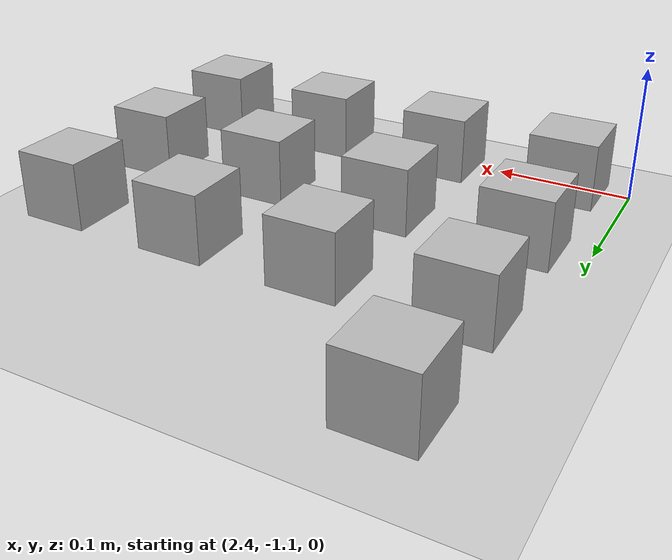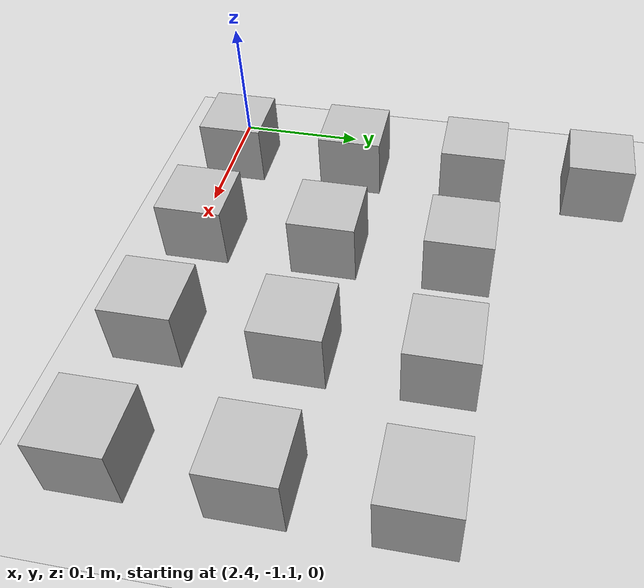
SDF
<sdf version="1.6">
 <world name="default">
  <model name="ground_plane">
   <static>1</static>
   <link name="link">
    <collision name="collision">
     <geometry><plane><normal>0 0 1</normal><size>100 100</size></plane></geometry>
     <surface><friction><ode><mu>100</mu><mu2>50</mu2></ode></friction></surface>
    </collision>
    <visual name="visual">
     <cast_shadows>0</cast_shadows>
     <geometry><plane><normal>0 0 1</normal><size>100 100</size></plane></geometry>
     <material>
      <script><uri>file://media/materials/scripts/gazebo.material</uri><name>Gazebo/Grey</name></script>
     </material>
    </visual>
    <velocity_decay><linear>0</linear><angular>0</angular></velocity_decay>
   </link>
  </model>
  <model name="at112">
   <static>0</static>
   <link name="link">
    <inertial>
     <mass>0.01</mass>
     <inertia><ixx>4e-05</ixx><ixy>0</ixy><ixz>0</ixz><iyy>4e-05</iyy><iyz>0</iyz><izz>4e-05</izz></inertia>
    </inertial>
    <visual name="visual">
     <transparency>0.1</transparency>
     <geometry><box><size>0.05 0.05 0.05</size></box></geometry>
     <material>
      <script>
       <uri>model://at0/materials/scripts</uri>
       <uri>model://at0/materials/textures</uri>
       <name>at0/Diffuse</name>
      </script>
     </material>
    </visual>
    <collision name="collision">
     <geometry><box><size>0.05 0.05 0.05</size></box></geometry>
     <surface><friction><ode><mu>0.8</mu><mu2>0.7</mu2></ode></friction></surface>
    </collision>
    <velocity_decay><linear>0</linear><angular>0</angular></velocity_decay>
   </link>
   <pose>2.44448 -1.09082 0.024993 -2.9e-05 -2.9e-05 2e-06</pose>
  </model>
  <model name="at113">
   <static>0</static>
   <link name="link">
    <inertial>
     <mass>0.01</mass>
     <inertia><ixx>4e-05</ixx><ixy>0</ixy><ixz>0</ixz><iyy>4e-05</iyy><iyz>0</iyz><izz>4e-05</izz></inertia>
    </inertial>
    <visual name="visual">
     <transparency>0.1</transparency>
     <geometry><box><size>0.05 0.05 0.05</size></box></geometry>
     <material>
      <script>
       <uri>model://at0/materials/scripts</uri>
       <uri>model://at0/materials/textures</uri>
       <name>at0/Diffuse</name>
      </script>
     </material>
    </visual>
    <collision name="collision">
     <geometry><box><size>0.05 0.05 0.05</size></box></geometry>
     <surface><friction><ode><mu>0.8</mu><mu2>0.7</mu2></ode></friction></surface>
    </collision>
    <velocity_decay><linear>0</linear><angular>0</angular></velocity_decay>
   </link>
   <pose>2.54448 -1.09082 0.024993 -2.9e-05 -2.9e-05 2e-06</pose>
  </model>
  <model name="at114">
   <static>0</static>
   <link name="link">
    <inertial>
     <mass>0.01</mass>
     <inertia><ixx>4e-05</ixx><ixy>0</ixy><ixz>0</ixz><iyy>4e-05</iyy><iyz>0</iyz><izz>4e-05</izz></inertia>
    </inertial>
    <visual name="visual">
     <transparency>0.1</transparency>
     <geometry><box><size>0.05 0.05 0.05</size></box></geometry>
     <material>
      <script>
       <uri>model://at0/materials/scripts</uri>
       <uri>model://at0/materials/textures</uri>
       <name>at0/Diffuse</name>
      </script>
     </material>
    </visual>
    <collision name="collision">
     <geometry><box><size>0.05 0.05 0.05</size></box></geometry>
     <surface><friction><ode><mu>0.8</mu><mu2>0.7</mu2></ode></friction></surface>
    </collision>
    <velocity_decay><linear>0</linear><angular>0</angular></velocity_decay>
   </link>
   <pose>2.64448 -1.09082 0.024993 -2.9e-05 -2.9e-05 2e-06</pose>
  </model>
  <model name="at115">
   <static>0</static>
   <link name="link">
    <inertial>
     <mass>0.01</mass>
     <inertia><ixx>4e-05</ixx><ixy>0</ixy><ixz>0</ixz><iyy>4e-05</iyy><iyz>0</iyz><izz>4e-05</izz></inertia>
    </inertial>
    <visual name="visual">
     <transparency>0.1</transparency>
     <geometry><box><size>0.05 0.05 0.05</size></box></geometry>
     <material>
      <script>
       <uri>model://at0/materials/scripts</uri>
       <uri>model://at0/materials/textures</uri>
       <name>at0/Diffuse</name>
      </script>
     </material>
    </visual>
    <collision name="collision">
     <geometry><box><size>0.05 0.05 0.05</size></box></geometry>
     <surface><friction><ode><mu>0.8</mu><mu2>0.7</mu2></ode></friction></surface>
    </collision>
    <velocity_decay><linear>0</linear><angular>0</angular></velocity_decay>
   </link>
   <pose>2.74448 -1.09082 0.024993 -2.9e-05 -2.9e-05 2e-06</pose>
  </model>
  <model name="at116">
   <static>0</static>
   <link name="link">
    <inertial>
     <mass>0.01</mass>
     <inertia><ixx>4e-05</ixx><ixy>0</ixy><ixz>0</ixz><iyy>4e-05</iyy><iyz>0</iyz><izz>4e-05</izz></inertia>
    </inertial>
    <visual name="visual">
     <transparency>0.1</transparency>
     <geometry><box><size>0.05 0.05 0.05</size></box></geometry>
     <material>
      <script>
       <uri>model://at0/materials/scripts</uri>
       <uri>model://at0/materials/textures</uri>
       <name>at0/Diffuse</name>
      </script>
     </material>
    </visual>
    <collision name="collision">
     <geometry><box><size>0.05 0.05 0.05</size></box></geometry>
     <surface><friction><ode><mu>0.8</mu><mu2>0.7</mu2></ode></friction></surface>
    </collision>
    <velocity_decay><linear>0</linear><angular>0</angular></velocity_decay>
   </link>
   <pose>2.44448 -0.990815 0.024993 -2.9e-05 -2.9e-05 2e-06</pose>
  </model>
  <model name="at117">
   <static>0</static>
   <link name="link">
    <inertial>
     <mass>0.01</mass>
     <inertia><ixx>4e-05</ixx><ixy>0</ixy><ixz>0</ixz><iyy>4e-05</iyy><iyz>0</iyz><izz>4e-05</izz></inertia>
    </inertial>
    <visual name="visual">
     <transparency>0.1</transparency>
     <geometry><box><size>0.05 0.05 0.05</size></box></geometry>
     <material>
      <script>
       <uri>model://at0/materials/scripts</uri>
       <uri>model://at0/materials/textures</uri>
       <name>at0/Diffuse</name>
      </script>
     </material>
    </visual>
    <collision name="collision">
     <geometry><box><size>0.05 0.05 0.05</size></box></geometry>
     <surface><friction><ode><mu>0.8</mu><mu2>0.7</mu2></ode></friction></surface>
    </collision>
    <velocity_decay><linear>0</linear><angular>0</angular></velocity_decay>
   </link>
   <pose>2.54448 -0.990815 0.024993 -2.9e-05 -2.9e-05 2e-06</pose>
  </model>
  <model name="at118">
   <static>0</static>
   <link name="link">
    <inertial>
     <mass>0.01</mass>
     <inertia><ixx>4e-05</ixx><ixy>0</ixy><ixz>0</ixz><iyy>4e-05</iyy><iyz>0</iyz><izz>4e-05</izz></inertia>
    </inertial>
    <visual name="visual">
     <transparency>0.1</transparency>
     <geometry><box><size>0.05 0.05 0.05</size></box></geometry>
     <material>
      <script>
       <uri>model://at0/materials/scripts</uri>
       <uri>model://at0/materials/textures</uri>
       <name>at0/Diffuse</name>
      </script>
     </material>
    </visual>
    <collision name="collision">
     <geometry><box><size>0.05 0.05 0.05</size></box></geometry>
     <surface><friction><ode><mu>0.8</mu><mu2>0.7</mu2></ode></friction></surface>
    </collision>
    <velocity_decay><linear>0</linear><angular>0</angular></velocity_decay>
   </link>
   <pose>2.64448 -0.990815 0.024993 -2.9e-05 -2.9e-05 2e-06</pose>
  </model>
  <model name="at119">
   <static>0</static>
   <link name="link">
    <inertial>
     <mass>0.01</mass>
     <inertia><ixx>4e-05</ixx><ixy>0</ixy><ixz>0</ixz><iyy>4e-05</iyy><iyz>0</iyz><izz>4e-05</izz></inertia>
    </inertial>
    <visual name="visual">
     <transparency>0.1</transparency>
     <geometry><box><size>0.05 0.05 0.05</size></box></geometry>
     <material>
      <script>
       <uri>model://at0/materials/scripts</uri>
       <uri>model://at0/materials/textures</uri>
       <name>at0/Diffuse</name>
      </script>
     </material>
    </visual>
    <collision name="collision">
     <geometry><box><size>0.05 0.05 0.05</size></box></geometry>
     <surface><friction><ode><mu>0.8</mu><mu2>0.7</mu2></ode></friction></surface>
    </collision>
    <velocity_decay><linear>0</linear><angular>0</angular></velocity_decay>
   </link>
   <pose>2.74448 -0.990815 0.024993 -2.9e-05 -2.9e-05 2e-06</pose>
  </model>
  <model name="at120">
   <static>0</static>
   <link name="link">
    <inertial>
     <mass>0.01</mass>
     <inertia><ixx>4e-05</ixx><ixy>0</ixy><ixz>0</ixz><iyy>4e-05</iyy><iyz>0</iyz><izz>4e-05</izz></inertia>
    </inertial>
    <visual name="visual">
     <transparency>0.1</transparency>
     <geometry><box><size>0.05 0.05 0.05</size></box></geometry>
     <material>
      <script>
       <uri>model://at0/materials/scripts</uri>
       <uri>model://at0/materials/textures</uri>
       <name>at0/Diffuse</name>
      </script>
     </material>
    </visual>
    <collision name="collision">
     <geometry><box><size>0.05 0.05 0.05</size></box></geometry>
     <surface><friction><ode><mu>0.8</mu><mu2>0.7</mu2></ode></friction></surface>
    </collision>
    <velocity_decay><linear>0</linear><angular>0</angular></velocity_decay>
   </link>
   <pose>2.44448 -0.890815 0.024993 -2.9e-05 -2.9e-05 2e-06</pose>
  </model>
  <model name="at121">
   <static>0</static>
   <link name="link">
    <inertial>
     <mass>0.01</mass>
     <inertia><ixx>4e-05</ixx><ixy>0</ixy><ixz>0</ixz><iyy>4e-05</iyy><iyz>0</iyz><izz>4e-05</izz></inertia>
    </inertial>
    <visual name="visual">
     <transparency>0.1</transparency>
     <geometry><box><size>0.05 0.05 0.05</size></box></geometry>
     <material>
      <script>
       <uri>model://at0/materials/scripts</uri>
       <uri>model://at0/materials/textures</uri>
       <name>at0/Diffuse</name>
      </script>
     </material>
    </visual>
    <collision name="collision">
     <geometry><box><size>0.05 0.05 0.05</size></box></geometry>
     <surface><friction><ode><mu>0.8</mu><mu2>0.7</mu2></ode></friction></surface>
    </collision>
    <velocity_decay><linear>0</linear><angular>0</angular></velocity_decay>
   </link>
   <pose>2.54448 -0.890817 0.024997 2.9e-05 2.9e-05 2e-06</pose>
  </model>
  <model name="at122">
   <static>0</static>
   <link name="link">
    <inertial>
     <mass>0.01</mass>
     <inertia><ixx>4e-05</ixx><ixy>0</ixy><ixz>0</ixz><iyy>4e-05</iyy><iyz>0</iyz><izz>4e-05</izz></inertia>
    </inertial>
    <visual name="visual">
     <transparency>0.1</transparency>
     <geometry><box><size>0.05 0.05 0.05</size></box></geometry>
     <material>
      <script>
       <uri>model://at0/materials/scripts</uri>
       <uri>model://at0/materials/textures</uri>
       <name>at0/Diffuse</name>
      </script>
     </material>
    </visual>
    <collision name="collision">
     <geometry><box><size>0.05 0.05 0.05</size></box></geometry>
     <surface><friction><ode><mu>0.8</mu><mu2>0.7</mu2></ode></friction></surface>
    </collision>
    <velocity_decay><linear>0</linear><angular>0</angular></velocity_decay>
   </link>
   <pose>2.64448 -0.890817 0.024997 2.9e-05 2.9e-05 2e-06</pose>
  </model>
  <model name="at123">
   <static>0</static>
   <link name="link">
    <inertial>
     <mass>0.01</mass>
     <inertia><ixx>4e-05</ixx><ixy>0</ixy><ixz>0</ixz><iyy>4e-05</iyy><iyz>0</iyz><izz>4e-05</izz></inertia>
    </inertial>
    <visual name="visual">
     <transparency>0.1</transparency>
     <geometry><box><size>0.05 0.05 0.05</size></box></geometry>
     <material>
      <script>
       <uri>model://at0/materials/scripts</uri>
       <uri>model://at0/materials/textures</uri>
       <name>at0/Diffuse</name>
      </script>
     </material>
    </visual>
    <collision name="collision">
     <geometry><box><size>0.05 0.05 0.05</size></box></geometry>
     <surface><friction><ode><mu>0.8</mu><mu2>0.7</mu2></ode></friction></surface>
    </collision>
    <velocity_decay><linear>0</linear><angular>0</angular></velocity_decay>
   </link>
   <pose>2.74448 -0.890817 0.024997 2.9e-05 2.9e-05 2e-06</pose>
  </model>
  <model name="at124">
   <static>0</static>
   <link name="link">
    <inertial>
     <mass>0.01</mass>
     <inertia><ixx>4e-05</ixx><ixy>0</ixy><ixz>0</ixz><iyy>4e-05</iyy><iyz>0</iyz><izz>4e-05</izz></inertia>
    </inertial>
    <visual name="visual">
     <transparency>0.1</transparency>
     <geometry><box><size>0.05 0.05 0.05</size></box></geometry>
     <material>
      <script>
       <uri>model://at0/materials/scripts</uri>
       <uri>model://at0/materials/textures</uri>
       <name>at0/Diffuse</name>
      </script>
     </material>
    </visual>
    <collision name="collision">
     <geometry><box><size>0.05 0.05 0.05</size></box></geometry>
     <surface><friction><ode><mu>0.8</mu><mu2>0.7</mu2></ode></friction></surface>
    </collision>
    <velocity_decay><linear>0</linear><angular>0</angular></velocity_decay>
   </link>
   <pose>2.44448 -0.790817 0.024997 2.9e-05 2.9e-05 2e-06</pose>
  </model>
 </world>
</sdf>
